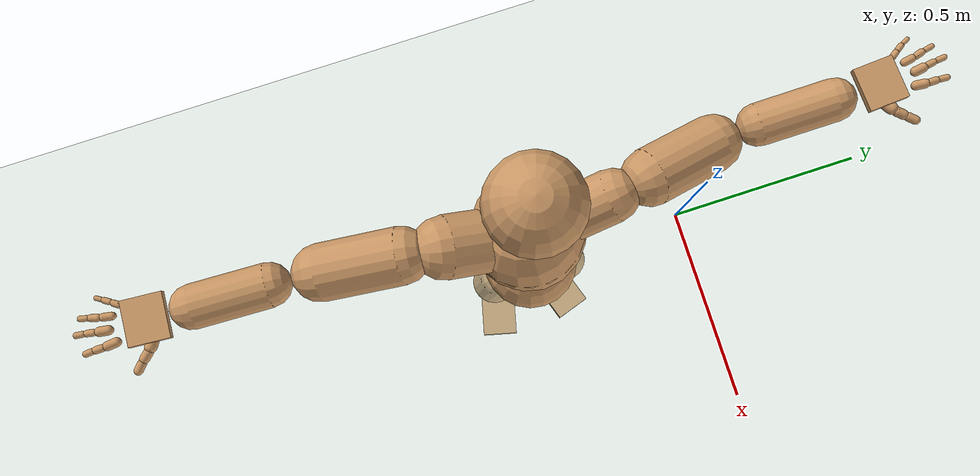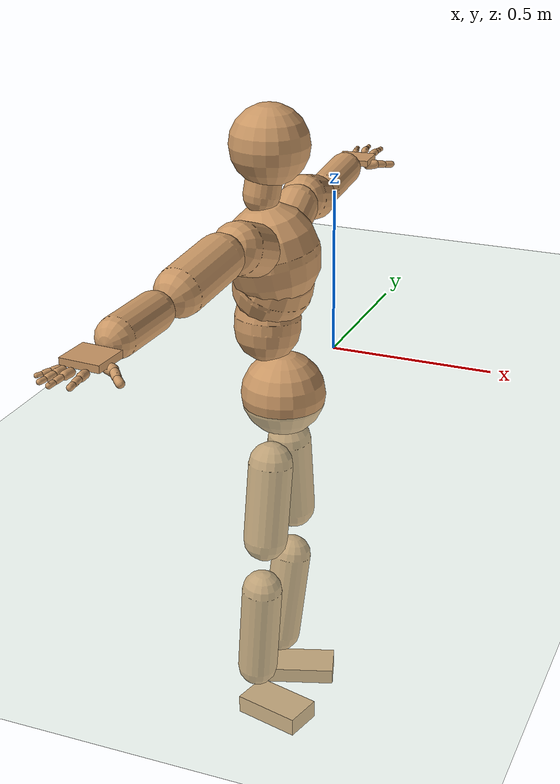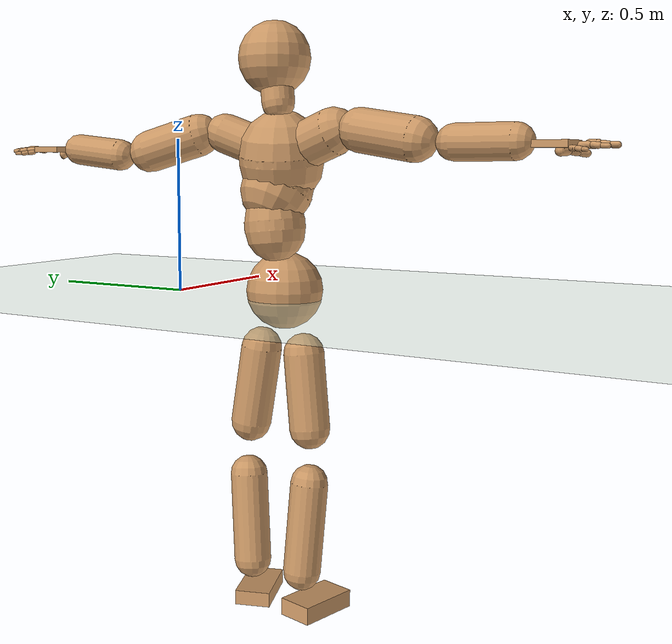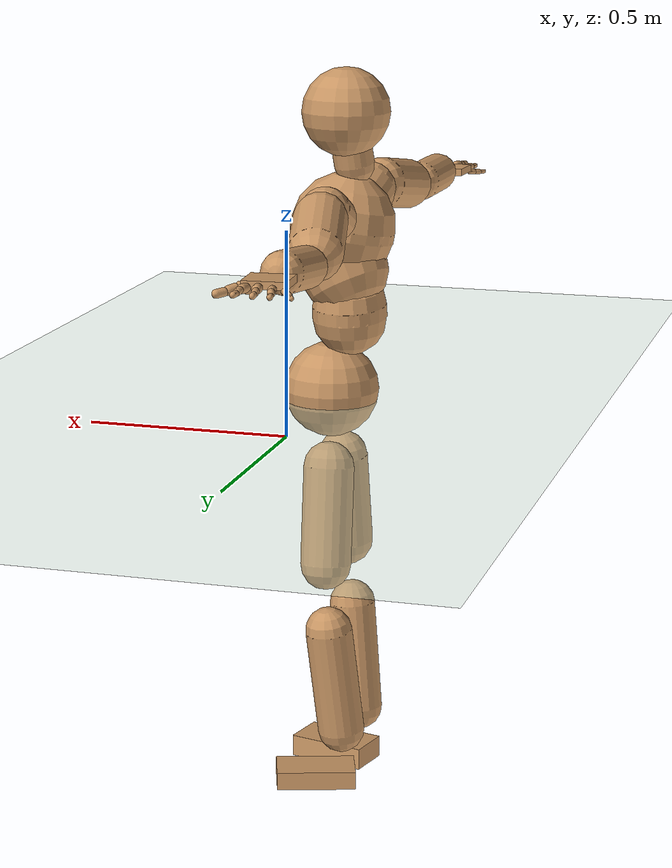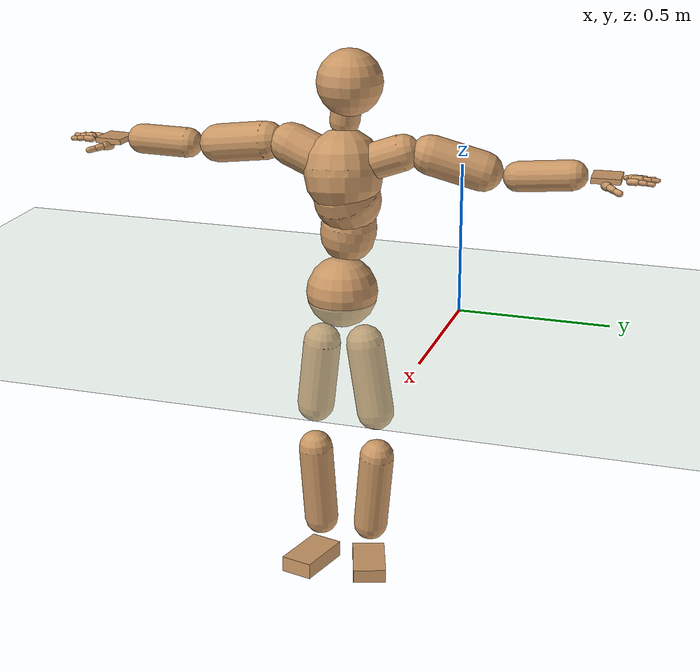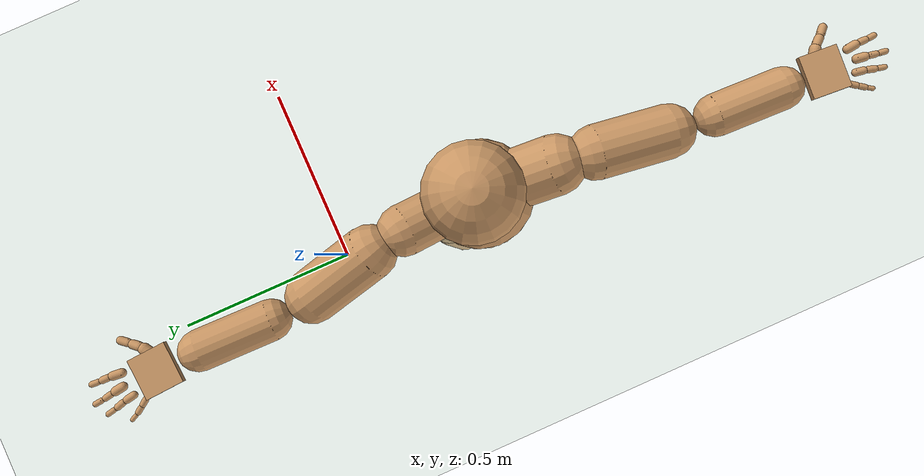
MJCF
<mujoco model="humanoid">
  <compiler coordinate="local" angle="radian"/>
  <default>
    <joint damping="0.0" armature="0.01" stiffness="0.0" limited="true"/>
    <geom conaffinity="1" condim="3" contype="7" margin="0.001" rgba="0.8 0.6 .4 1"/>
  </default>
  <asset>
    <texture type="skybox" builtin="gradient" rgb1=".4 .5 .6" rgb2="0 0 0" width="100" height="100"/>
    <texture builtin="flat" height="1278" mark="cross" markrgb="1 1 1" name="texgeom" random="0.01" rgb1="0.8 0.6 0.4" rgb2="0.8 0.6 0.4" type="cube" width="127"/>
    <texture builtin="checker" height="100" name="texplane" rgb1="0 0 0" rgb2="0.8 0.8 0.8" type="2d" width="100"/>
    <material name="MatPlane" reflectance="0.5" shininess="1" specular="1" texrepeat="60 60" texture="texplane"/>
    <material name="geom" texture="texgeom" texuniform="true"/>
  </asset>
  <worldbody>
    <light cutoff="100" diffuse="1 1 1" dir="-0 0 -1.3" directional="true" exponent="1" pos="0 0 1.3" specular=".1 .1 .1"/>
    <geom conaffinity="1" condim="3" name="floor" pos="0 0 0" rgba="0.8 0.9 0.8 1" size="100 100 .2" type="plane" material="MatPlane"/>
    <body name="Pelvis" pos="0.0021 -0.4071 0.026">
      <freejoint name="Pelvis"/>
      <geom type="sphere" contype="1" conaffinity="1" density="500" size="0.1216" pos="0.0000 0.0000 0.0000" name="Pelvis"/>
      <body name="L_Hip" pos="-0.0142 0.0637 -0.1029">
        <joint name="L_Hip_x" type="hinge" pos="0 0 0" axis="1 0 0" stiffness="800" damping="80" armature="0.02" range="-180.0000 180.0000"/>
        <joint name="L_Hip_y" type="hinge" pos="0 0 0" axis="0 1 0" stiffness="800" damping="80" armature="0.02" range="-180.0000 180.0000"/>
        <joint name="L_Hip_z" type="hinge" pos="0 0 0" axis="0 0 1" stiffness="800" damping="80" armature="0.02" range="-180.0000 180.0000"/>
        <geom type="capsule" contype="1" conaffinity="1" density="500" fromto="-0.0011 0.0127 -0.0830 -0.0045 0.0510 -0.3320" size="0.0646" name="L_Hip"/>
        <body name="L_Knee" pos="-0.0056 0.0637 -0.415">
          <joint name="L_Knee_x" type="hinge" pos="0 0 0" axis="1 0 0" stiffness="800" damping="80" armature="0.02" range="-180.0000 180.0000"/>
          <joint name="L_Knee_y" type="hinge" pos="0 0 0" axis="0 1 0" stiffness="800" damping="80" armature="0.02" range="-180.0000 180.0000"/>
          <joint name="L_Knee_z" type="hinge" pos="0 0 0" axis="0 0 1" stiffness="800" damping="80" armature="0.02" range="-180.0000 180.0000"/>
          <geom type="capsule" contype="1" conaffinity="1" density="500" fromto="-0.0088 -0.0100 -0.0927 -0.0352 -0.0400 -0.3707" size="0.0603" name="L_Knee"/>
          <body name="L_Ankle" pos="-0.0441 -0.05 -0.4634">
            <joint name="L_Ankle_x" type="hinge" pos="0 0 0" axis="1 0 0" stiffness="800" damping="80" armature="0.02" range="-180.0000 180.0000"/>
            <joint name="L_Ankle_y" type="hinge" pos="0 0 0" axis="0 1 0" stiffness="800" damping="80" armature="0.02" range="-180.0000 180.0000"/>
            <joint name="L_Ankle_z" type="hinge" pos="0 0 0" axis="0 0 1" stiffness="800" damping="80" armature="0.02" range="-180.0000 180.0000"/>
            <geom type="box" contype="1" conaffinity="1" density="500" pos="0.0736 0.0243 -0.0340" size="0.1021 0.0571 0.0236" quat="0.9874 0.0000 0.0000 0.1586" name="L_Ankle"/>
            <body name="L_Toe" pos="0.1472 0.0485 -0.0679">
              <joint name="L_Toe_x" type="hinge" pos="0 0 0" axis="1 0 0" stiffness="500" damping="50" armature="0.02" range="-180.0000 180.0000"/>
              <joint name="L_Toe_y" type="hinge" pos="0 0 0" axis="0 1 0" stiffness="500" damping="50" armature="0.02" range="-180.0000 180.0000"/>
              <joint name="L_Toe_z" type="hinge" pos="0 0 0" axis="0 0 1" stiffness="500" damping="50" armature="0.02" range="-180.0000 180.0000"/>
              <geom type="box" contype="1" conaffinity="1" density="500" pos="0.0000 0.0000 0.0334" size="0.0011 0.0027 0.0012" quat="0.9867 0.0000 0.0000 0.1625" name="L_Toe"/>
            </body>
          </body>
        </body>
      </body>
      <body name="R_Hip" pos="-0.0071 -0.0664 -0.1151">
        <joint name="R_Hip_x" type="hinge" pos="0 0 0" axis="1 0 0" stiffness="800" damping="80" armature="0.02" range="-180.0000 180.0000"/>
        <joint name="R_Hip_y" type="hinge" pos="0 0 0" axis="0 1 0" stiffness="800" damping="80" armature="0.02" range="-180.0000 180.0000"/>
        <joint name="R_Hip_z" type="hinge" pos="0 0 0" axis="0 0 1" stiffness="800" damping="80" armature="0.02" range="-180.0000 180.0000"/>
        <geom type="capsule" contype="1" conaffinity="1" density="500" fromto="-0.0029 -0.0093 -0.0792 -0.0115 -0.0371 -0.3167" size="0.0644" name="R_Hip"/>
        <body name="R_Knee" pos="-0.0143 -0.0464 -0.3959">
          <joint name="R_Knee_x" type="hinge" pos="0 0 0" axis="1 0 0" stiffness="800" damping="80" armature="0.02" range="-180.0000 180.0000"/>
          <joint name="R_Knee_y" type="hinge" pos="0 0 0" axis="0 1 0" stiffness="800" damping="80" armature="0.02" range="-180.0000 180.0000"/>
          <joint name="R_Knee_z" type="hinge" pos="0 0 0" axis="0 0 1" stiffness="800" damping="80" armature="0.02" range="-180.0000 180.0000"/>
          <geom type="capsule" contype="1" conaffinity="1" density="500" fromto="-0.0083 0.0037 -0.0957 -0.0333 0.0149 -0.3827" size="0.0598" name="R_Knee"/>
          <body name="R_Ankle" pos="-0.0416 0.0186 -0.4784">
            <joint name="R_Ankle_x" type="hinge" pos="0 0 0" axis="1 0 0" stiffness="800" damping="80" armature="0.02" range="-180.0000 180.0000"/>
            <joint name="R_Ankle_y" type="hinge" pos="0 0 0" axis="0 1 0" stiffness="800" damping="80" armature="0.02" range="-180.0000 180.0000"/>
            <joint name="R_Ankle_z" type="hinge" pos="0 0 0" axis="0 0 1" stiffness="800" damping="80" armature="0.02" range="-180.0000 180.0000"/>
            <geom type="box" contype="1" conaffinity="1" density="500" pos="0.0771 -0.0193 -0.0328" size="0.1021 0.0571 0.0282" quat="0.9925 0.0000 0.0000 -0.1221" name="R_Ankle"/>
            <body name="R_Toe" pos="0.1542 -0.0385 -0.0657">
              <joint name="R_Toe_x" type="hinge" pos="0 0 0" axis="1 0 0" stiffness="500" damping="50" armature="0.02" range="-180.0000 180.0000"/>
              <joint name="R_Toe_y" type="hinge" pos="0 0 0" axis="0 1 0" stiffness="500" damping="50" armature="0.02" range="-180.0000 180.0000"/>
              <joint name="R_Toe_z" type="hinge" pos="0 0 0" axis="0 0 1" stiffness="500" damping="50" armature="0.02" range="-180.0000 180.0000"/>
              <geom type="box" contype="1" conaffinity="1" density="500" pos="0.0000 0.0000 0.0277" size="0.0011 0.0027 0.0012" quat="0.9934 0.0000 0.0000 -0.1146" name="R_Toe"/>
            </body>
          </body>
        </body>
      </body>
      <body name="Torso" pos="-0.0502 -0.0006 0.123">
        <joint name="Torso_x" type="hinge" pos="0 0 0" axis="1 0 0" stiffness="1000" damping="100" armature="0.02" range="-180.0000 180.0000"/>
        <joint name="Torso_y" type="hinge" pos="0 0 0" axis="0 1 0" stiffness="1000" damping="100" armature="0.02" range="-180.0000 180.0000"/>
        <joint name="Torso_z" type="hinge" pos="0 0 0" axis="0 0 1" stiffness="1000" damping="100" armature="0.02" range="-180.0000 180.0000"/>
        <geom type="capsule" contype="1" conaffinity="1" density="500" fromto="0.0020 0.0101 0.0990 0.0013 0.0067 0.0660" size="0.0945" name="Torso"/>
        <body name="Spine" pos="0.0034 0.0168 0.165">
          <joint name="Spine_x" type="hinge" pos="0 0 0" axis="1 0 0" stiffness="1000" damping="100" armature="0.02" range="-180.0000 180.0000"/>
          <joint name="Spine_y" type="hinge" pos="0 0 0" axis="0 1 0" stiffness="1000" damping="100" armature="0.02" range="-180.0000 180.0000"/>
          <joint name="Spine_z" type="hinge" pos="0 0 0" axis="0 0 1" stiffness="1000" damping="100" armature="0.02" range="-180.0000 180.0000"/>
          <geom type="capsule" contype="1" conaffinity="1" density="500" fromto="0.0191 -0.0087 0.0378 0.0128 -0.0058 0.0252" size="0.113" name="Spine"/>
          <body name="Chest" pos="0.0319 -0.0144 0.063">
            <joint name="Chest_x" type="hinge" pos="0 0 0" axis="1 0 0" stiffness="1000" damping="100" armature="0.02" range="-180.0000 180.0000"/>
            <joint name="Chest_y" type="hinge" pos="0 0 0" axis="0 1 0" stiffness="1000" damping="100" armature="0.02" range="-180.0000 180.0000"/>
            <joint name="Chest_z" type="hinge" pos="0 0 0" axis="0 0 1" stiffness="1000" damping="100" armature="0.02" range="-180.0000 180.0000"/>
            <geom type="capsule" contype="1" conaffinity="1" density="500" fromto="-0.0133 -0.0050 0.0727 -0.0089 -0.0033 0.0484" size="0.1321" name="Chest"/>
            <body name="Neck" pos="-0.0435 -0.0149 0.1909">
              <joint name="Neck_x" type="hinge" pos="0 0 0" axis="1 0 0" stiffness="500" damping="50" armature="0.02" range="-180.0000 180.0000"/>
              <joint name="Neck_y" type="hinge" pos="0 0 0" axis="0 1 0" stiffness="500" damping="50" armature="0.02" range="-180.0000 180.0000"/>
              <joint name="Neck_z" type="hinge" pos="0 0 0" axis="0 0 1" stiffness="500" damping="50" armature="0.02" range="-180.0000 180.0000"/>
              <geom type="capsule" contype="1" conaffinity="1" density="500" fromto="0.0040 0.0056 0.0334 0.0160 0.0225 0.1337" size="0.0506" name="Neck"/>
              <body name="Head" pos="0.0201 0.0282 0.1671">
                <joint name="Head_x" type="hinge" pos="0 0 0" axis="1 0 0" stiffness="500" damping="50" armature="0.02" range="-180.0000 180.0000"/>
                <joint name="Head_y" type="hinge" pos="0 0 0" axis="0 1 0" stiffness="500" damping="50" armature="0.02" range="-180.0000 180.0000"/>
                <joint name="Head_z" type="hinge" pos="0 0 0" axis="0 0 1" stiffness="500" damping="50" armature="0.02" range="-180.0000 180.0000"/>
                <geom type="sphere" contype="1" conaffinity="1" density="500" size="0.1109" pos="0.0000 0.0000 0.0000" name="Head"/>
              </body>
            </body>
            <body name="L_Thorax" pos="-0.0104 0.0514 0.0857">
              <joint name="L_Thorax_x" type="hinge" pos="0 0 0" axis="1 0 0" stiffness="500" damping="50" armature="0.02" range="-180.0000 180.0000"/>
              <joint name="L_Thorax_y" type="hinge" pos="0 0 0" axis="0 1 0" stiffness="500" damping="50" armature="0.02" range="-180.0000 180.0000"/>
              <joint name="L_Thorax_z" type="hinge" pos="0 0 0" axis="0 0 1" stiffness="500" damping="50" armature="0.02" range="-180.0000 180.0000"/>
              <geom type="capsule" contype="1" conaffinity="1" density="500" fromto="-0.0027 0.0357 0.0129 -0.0109 0.1429 0.0516" size="0.0615" name="L_Thorax"/>
              <body name="L_Shoulder" pos="-0.0137 0.1787 0.0645">
                <joint name="L_Shoulder_x" type="hinge" pos="0 0 0" axis="1 0 0" stiffness="500" damping="50" armature="0.02" range="-180.0000 180.0000"/>
                <joint name="L_Shoulder_y" type="hinge" pos="0 0 0" axis="0 1 0" stiffness="500" damping="50" armature="0.02" range="-180.0000 180.0000"/>
                <joint name="L_Shoulder_z" type="hinge" pos="0 0 0" axis="0 0 1" stiffness="500" damping="50" armature="0.02" range="-180.0000 180.0000"/>
                <geom type="capsule" contype="1" conaffinity="1" density="500" fromto="-0.0120 0.0560 -0.0170 -0.0480 0.2240 -0.0681" size="0.0665" name="L_Shoulder"/>
                <body name="L_Elbow" pos="-0.06 0.2799 -0.0852">
                  <joint name="L_Elbow_x" type="hinge" pos="0 0 0" axis="1 0 0" stiffness="500" damping="50" armature="0.02" range="-720.0000 720.0000"/>
                  <joint name="L_Elbow_y" type="hinge" pos="0 0 0" axis="0 1 0" stiffness="500" damping="50" armature="0.02" range="-720.0000 720.0000"/>
                  <joint name="L_Elbow_z" type="hinge" pos="0 0 0" axis="0 0 1" stiffness="500" damping="50" armature="0.02" range="-720.0000 720.0000"/>
                  <geom type="capsule" contype="1" conaffinity="1" density="500" fromto="0.0008 0.0593 0.0064 0.0032 0.2370 0.0255" size="0.0503" name="L_Elbow"/>
                  <body name="L_Wrist" pos="0.004 0.2963 0.0319">
                    <joint name="L_Wrist_x" type="hinge" pos="0 0 0" axis="1 0 0" stiffness="300" damping="30" armature="0.02" range="-180.0000 180.0000"/>
                    <joint name="L_Wrist_y" type="hinge" pos="0 0 0" axis="0 1 0" stiffness="300" damping="30" armature="0.02" range="-180.0000 180.0000"/>
                    <joint name="L_Wrist_z" type="hinge" pos="0 0 0" axis="0 0 1" stiffness="300" damping="30" armature="0.02" range="-180.0000 180.0000"/>
                    <geom type="box" contype="1" conaffinity="1" density="500" pos="-0.0032 0.0514 -0.0054" size="0.0478 0.0513 0.0093" quat="0.7288 0.0000 0.0000 -0.6847" name="L_Wrist"/>
                    <body name="L_Index1" pos="0.0243 0.1204 -0.0069">
                      <joint name="L_Index1_x" type="hinge" pos="0 0 0" axis="1 0 0" stiffness="100" damping="10" armature="0.02" range="-180.0000 180.0000"/>
                      <joint name="L_Index1_y" type="hinge" pos="0 0 0" axis="0 1 0" stiffness="100" damping="10" armature="0.02" range="-180.0000 180.0000"/>
                      <joint name="L_Index1_z" type="hinge" pos="0 0 0" axis="0 0 1" stiffness="100" damping="10" armature="0.02" range="-180.0000 180.0000"/>
                      <geom type="capsule" contype="1" conaffinity="1" density="500" fromto="0.0008 0.0071 0.0005 0.0031 0.0284 0.0018" size="0.0109" name="L_Index1"/>
                      <body name="L_Index2" pos="0.0039 0.0355 0.0023">
                        <joint name="L_Index2_x" type="hinge" pos="0 0 0" axis="1 0 0" stiffness="100" damping="10" armature="0.02" range="-180.0000 180.0000"/>
                        <joint name="L_Index2_y" type="hinge" pos="0 0 0" axis="0 1 0" stiffness="100" damping="10" armature="0.02" range="-180.0000 180.0000"/>
                        <joint name="L_Index2_z" type="hinge" pos="0 0 0" axis="0 0 1" stiffness="100" damping="10" armature="0.02" range="-180.0000 180.0000"/>
                        <geom type="capsule" contype="1" conaffinity="1" density="500" fromto="-0.0001 0.0050 -0.0006 -0.0002 0.0199 -0.0022" size="0.0087" name="L_Index2"/>
                        <body name="L_Index3" pos="-0.0003 0.0249 -0.0028">
                          <joint name="L_Index3_x" type="hinge" pos="0 0 0" axis="1 0 0" stiffness="100" damping="10" armature="0.02" range="-180.0000 180.0000"/>
                          <joint name="L_Index3_y" type="hinge" pos="0 0 0" axis="0 1 0" stiffness="100" damping="10" armature="0.02" range="-180.0000 180.0000"/>
                          <joint name="L_Index3_z" type="hinge" pos="0 0 0" axis="0 0 1" stiffness="100" damping="10" armature="0.02" range="-180.0000 180.0000"/>
                          <geom type="capsule" contype="1" conaffinity="1" density="500" fromto="0.0003 0.0054 -0.0002 0.0014 0.0215 -0.0006" size="0.0074" name="L_Index3"/>
                        </body>
                      </body>
                    </body>
                    <body name="L_Middle1" pos="-0.0043 0.1293 -0.0038">
                      <joint name="L_Middle1_x" type="hinge" pos="0 0 0" axis="1 0 0" stiffness="100" damping="10" armature="0.02" range="-180.0000 180.0000"/>
                      <joint name="L_Middle1_y" type="hinge" pos="0 0 0" axis="0 1 0" stiffness="100" damping="10" armature="0.02" range="-180.0000 180.0000"/>
                      <joint name="L_Middle1_z" type="hinge" pos="0 0 0" axis="0 0 1" stiffness="100" damping="10" armature="0.02" range="-180.0000 180.0000"/>
                      <geom type="capsule" contype="1" conaffinity="1" density="500" fromto="-0.0010 0.0068 0.0002 -0.0040 0.0272 0.0006" size="0.011" name="L_Middle1"/>
                      <body name="L_Middle2" pos="-0.0051 0.034 0.0008">
                        <joint name="L_Middle2_x" type="hinge" pos="0 0 0" axis="1 0 0" stiffness="100" damping="10" armature="0.02" range="-180.0000 180.0000"/>
                        <joint name="L_Middle2_y" type="hinge" pos="0 0 0" axis="0 1 0" stiffness="100" damping="10" armature="0.02" range="-180.0000 180.0000"/>
                        <joint name="L_Middle2_z" type="hinge" pos="0 0 0" axis="0 0 1" stiffness="100" damping="10" armature="0.02" range="-180.0000 180.0000"/>
                        <geom type="capsule" contype="1" conaffinity="1" density="500" fromto="-0.0010 0.0052 -0.0006 -0.0039 0.0208 -0.0023" size="0.008" name="L_Middle2"/>
                        <body name="L_Middle3" pos="-0.0048 0.026 -0.0029">
                          <joint name="L_Middle3_x" type="hinge" pos="0 0 0" axis="1 0 0" stiffness="100" damping="10" armature="0.02" range="-180.0000 180.0000"/>
                          <joint name="L_Middle3_y" type="hinge" pos="0 0 0" axis="0 1 0" stiffness="100" damping="10" armature="0.02" range="-180.0000 180.0000"/>
                          <joint name="L_Middle3_z" type="hinge" pos="0 0 0" axis="0 0 1" stiffness="100" damping="10" armature="0.02" range="-180.0000 180.0000"/>
                          <geom type="capsule" contype="1" conaffinity="1" density="500" fromto="-0.0006 0.0056 -0.0002 -0.0023 0.0224 -0.0007" size="0.007" name="L_Middle3"/>
                        </body>
                      </body>
                    </body>
                    <body name="L_Pinky1" pos="-0.0519 0.1003 -0.0146">
                      <joint name="L_Pinky1_x" type="hinge" pos="0 0 0" axis="1 0 0" stiffness="100" damping="10" armature="0.02" range="-180.0000 180.0000"/>
                      <joint name="L_Pinky1_y" type="hinge" pos="0 0 0" axis="0 1 0" stiffness="100" damping="10" armature="0.02" range="-180.0000 180.0000"/>
                      <joint name="L_Pinky1_z" type="hinge" pos="0 0 0" axis="0 0 1" stiffness="100" damping="10" armature="0.02" range="-180.0000 180.0000"/>
                      <geom type="capsule" contype="1" conaffinity="1" density="500" fromto="-0.0026 0.0037 -0.0004 -0.0105 0.0147 -0.0015" size="0.0077" name="L_Pinky1"/>
                      <body name="L_Pinky2" pos="-0.0131 0.0183 -0.0018">
                        <joint name="L_Pinky2_x" type="hinge" pos="0 0 0" axis="1 0 0" stiffness="100" damping="10" armature="0.02" range="-180.0000 180.0000"/>
                        <joint name="L_Pinky2_y" type="hinge" pos="0 0 0" axis="0 1 0" stiffness="100" damping="10" armature="0.02" range="-180.0000 180.0000"/>
                        <joint name="L_Pinky2_z" type="hinge" pos="0 0 0" axis="0 0 1" stiffness="100" damping="10" armature="0.02" range="-180.0000 180.0000"/>
                        <geom type="capsule" contype="1" conaffinity="1" density="500" fromto="-0.0024 0.0036 -0.0005 -0.0095 0.0142 -0.0019" size="0.0073" name="L_Pinky2"/>
                        <body name="L_Pinky3" pos="-0.0119 0.0178 -0.0024">
                          <joint name="L_Pinky3_x" type="hinge" pos="0 0 0" axis="1 0 0" stiffness="100" damping="10" armature="0.02" range="-180.0000 180.0000"/>
                          <joint name="L_Pinky3_y" type="hinge" pos="0 0 0" axis="0 1 0" stiffness="100" damping="10" armature="0.02" range="-180.0000 180.0000"/>
                          <joint name="L_Pinky3_z" type="hinge" pos="0 0 0" axis="0 0 1" stiffness="100" damping="10" armature="0.02" range="-180.0000 180.0000"/>
                          <geom type="capsule" contype="1" conaffinity="1" density="500" fromto="-0.0020 0.0040 -0.0001 -0.0079 0.0158 -0.0003" size="0.0054" name="L_Pinky3"/>
                        </body>
                      </body>
                    </body>
                    <body name="L_Ring1" pos="-0.0325 0.1157 -0.0077">
                      <joint name="L_Ring1_x" type="hinge" pos="0 0 0" axis="1 0 0" stiffness="100" damping="10" armature="0.02" range="-180.0000 180.0000"/>
                      <joint name="L_Ring1_y" type="hinge" pos="0 0 0" axis="0 1 0" stiffness="100" damping="10" armature="0.02" range="-180.0000 180.0000"/>
                      <joint name="L_Ring1_z" type="hinge" pos="0 0 0" axis="0 0 1" stiffness="100" damping="10" armature="0.02" range="-180.0000 180.0000"/>
                      <geom type="capsule" contype="1" conaffinity="1" density="500" fromto="-0.0011 0.0064 0.0002 -0.0045 0.0255 0.0006" size="0.0093" name="L_Ring1"/>
                      <body name="L_Ring2" pos="-0.0056 0.0319 0.0008">
                        <joint name="L_Ring2_x" type="hinge" pos="0 0 0" axis="1 0 0" stiffness="100" damping="10" armature="0.02" range="-180.0000 180.0000"/>
                        <joint name="L_Ring2_y" type="hinge" pos="0 0 0" axis="0 1 0" stiffness="100" damping="10" armature="0.02" range="-180.0000 180.0000"/>
                        <joint name="L_Ring2_z" type="hinge" pos="0 0 0" axis="0 0 1" stiffness="100" damping="10" armature="0.02" range="-180.0000 180.0000"/>
                        <geom type="capsule" contype="1" conaffinity="1" density="500" fromto="-0.0015 0.0051 -0.0006 -0.0059 0.0204 -0.0022" size="0.0085" name="L_Ring2"/>
                        <body name="L_Ring3" pos="-0.0074 0.0255 -0.0028">
                          <joint name="L_Ring3_x" type="hinge" pos="0 0 0" axis="1 0 0" stiffness="100" damping="10" armature="0.02" range="-180.0000 180.0000"/>
                          <joint name="L_Ring3_y" type="hinge" pos="0 0 0" axis="0 1 0" stiffness="100" damping="10" armature="0.02" range="-180.0000 180.0000"/>
                          <joint name="L_Ring3_z" type="hinge" pos="0 0 0" axis="0 0 1" stiffness="100" damping="10" armature="0.02" range="-180.0000 180.0000"/>
                          <geom type="capsule" contype="1" conaffinity="1" density="500" fromto="-0.0011 0.0055 -0.0002 -0.0043 0.0220 -0.0006" size="0.0066" name="L_Ring3"/>
                        </body>
                      </body>
                    </body>
                    <body name="L_Thumb1" pos="0.0323 0.0481 -0.0212">
                      <joint name="L_Thumb1_x" type="hinge" pos="0 0 0" axis="1 0 0" stiffness="100" damping="10" armature="0.02" range="-180.0000 180.0000"/>
                      <joint name="L_Thumb1_y" type="hinge" pos="0 0 0" axis="0 1 0" stiffness="100" damping="10" armature="0.02" range="-180.0000 180.0000"/>
                      <joint name="L_Thumb1_z" type="hinge" pos="0 0 0" axis="0 0 1" stiffness="100" damping="10" armature="0.02" range="-180.0000 180.0000"/>
                      <geom type="capsule" contype="1" conaffinity="1" density="500" fromto="0.0061 0.0037 0.0005 0.0242 0.0148 0.0018" size="0.0145" name="L_Thumb1"/>
                      <body name="L_Thumb2" pos="0.0303 0.0186 0.0023">
                        <joint name="L_Thumb2_x" type="hinge" pos="0 0 0" axis="1 0 0" stiffness="100" damping="10" armature="0.02" range="-180.0000 180.0000"/>
                        <joint name="L_Thumb2_y" type="hinge" pos="0 0 0" axis="0 1 0" stiffness="100" damping="10" armature="0.02" range="-180.0000 180.0000"/>
                        <joint name="L_Thumb2_z" type="hinge" pos="0 0 0" axis="0 0 1" stiffness="100" damping="10" armature="0.02" range="-180.0000 180.0000"/>
                        <geom type="capsule" contype="1" conaffinity="1" density="500" fromto="0.0037 0.0044 -0.0011 0.0149 0.0178 -0.0044" size="0.0114" name="L_Thumb2"/>
                        <body name="L_Thumb3" pos="0.0186 0.0222 -0.0056">
                          <joint name="L_Thumb3_x" type="hinge" pos="0 0 0" axis="1 0 0" stiffness="100" damping="10" armature="0.02" range="-180.0000 180.0000"/>
                          <joint name="L_Thumb3_y" type="hinge" pos="0 0 0" axis="0 1 0" stiffness="100" damping="10" armature="0.02" range="-180.0000 180.0000"/>
                          <joint name="L_Thumb3_z" type="hinge" pos="0 0 0" axis="0 0 1" stiffness="100" damping="10" armature="0.02" range="-180.0000 180.0000"/>
                          <geom type="capsule" contype="1" conaffinity="1" density="500" fromto="0.0041 0.0048 -0.0007 0.0165 0.0194 -0.0028" size="0.0103" name="L_Thumb3"/>
                        </body>
                      </body>
                    </body>
                  </body>
                </body>
              </body>
            </body>
            <body name="R_Thorax" pos="-0.0128 -0.0613 0.0867">
              <joint name="R_Thorax_x" type="hinge" pos="0 0 0" axis="1 0 0" stiffness="500" damping="50" armature="0.02" range="-180.0000 180.0000"/>
              <joint name="R_Thorax_y" type="hinge" pos="0 0 0" axis="0 1 0" stiffness="500" damping="50" armature="0.02" range="-180.0000 180.0000"/>
              <joint name="R_Thorax_z" type="hinge" pos="0 0 0" axis="0 0 1" stiffness="500" damping="50" armature="0.02" range="-180.0000 180.0000"/>
              <geom type="capsule" contype="1" conaffinity="1" density="500" fromto="-0.0034 -0.0326 0.0124 -0.0136 -0.1303 0.0497" size="0.0725" name="R_Thorax"/>
              <body name="R_Shoulder" pos="-0.017 -0.1629 0.0621">
                <joint name="R_Shoulder_x" type="hinge" pos="0 0 0" axis="1 0 0" stiffness="500" damping="50" armature="0.02" range="-180.0000 180.0000"/>
                <joint name="R_Shoulder_y" type="hinge" pos="0 0 0" axis="0 1 0" stiffness="500" damping="50" armature="0.02" range="-180.0000 180.0000"/>
                <joint name="R_Shoulder_z" type="hinge" pos="0 0 0" axis="0 0 1" stiffness="500" damping="50" armature="0.02" range="-180.0000 180.0000"/>
                <geom type="capsule" contype="1" conaffinity="1" density="500" fromto="-0.0078 -0.0607 -0.0096 -0.0310 -0.2429 -0.0385" size="0.0655" name="R_Shoulder"/>
                <body name="R_Elbow" pos="-0.0388 -0.3036 -0.0482">
                  <joint name="R_Elbow_x" type="hinge" pos="0 0 0" axis="1 0 0" stiffness="500" damping="50" armature="0.02" range="-720.0000 720.0000"/>
                  <joint name="R_Elbow_y" type="hinge" pos="0 0 0" axis="0 1 0" stiffness="500" damping="50" armature="0.02" range="-720.0000 720.0000"/>
                  <joint name="R_Elbow_z" type="hinge" pos="0 0 0" axis="0 0 1" stiffness="500" damping="50" armature="0.02" range="-720.0000 720.0000"/>
                  <geom type="capsule" contype="1" conaffinity="1" density="500" fromto="-0.0021 -0.0575 0.0001 -0.0084 -0.2298 0.0005" size="0.0515" name="R_Elbow"/>
                  <body name="R_Wrist" pos="-0.0105 -0.2873 0.0006">
                    <joint name="R_Wrist_x" type="hinge" pos="0 0 0" axis="1 0 0" stiffness="300" damping="30" armature="0.02" range="-180.0000 180.0000"/>
                    <joint name="R_Wrist_y" type="hinge" pos="0 0 0" axis="0 1 0" stiffness="300" damping="30" armature="0.02" range="-180.0000 180.0000"/>
                    <joint name="R_Wrist_z" type="hinge" pos="0 0 0" axis="0 0 1" stiffness="300" damping="30" armature="0.02" range="-180.0000 180.0000"/>
                    <geom type="box" contype="1" conaffinity="1" density="500" pos="-0.0036 -0.0509 -0.0076" size="0.0478 0.0527 0.0096" quat="0.7319 0.0000 0.0000 0.6814" name="R_Wrist"/>
                    <body name="R_Index1" pos="0.0234 -0.1195 -0.0112">
                      <joint name="R_Index1_x" type="hinge" pos="0 0 0" axis="1 0 0" stiffness="100" damping="10" armature="0.02" range="-180.0000 180.0000"/>
                      <joint name="R_Index1_y" type="hinge" pos="0 0 0" axis="0 1 0" stiffness="100" damping="10" armature="0.02" range="-180.0000 180.0000"/>
                      <joint name="R_Index1_z" type="hinge" pos="0 0 0" axis="0 0 1" stiffness="100" damping="10" armature="0.02" range="-180.0000 180.0000"/>
                      <geom type="capsule" contype="1" conaffinity="1" density="500" fromto="0.0008 -0.0071 0.0005 0.0031 -0.0284 0.0018" size="0.0109" name="R_Index1"/>
                      <body name="R_Index2" pos="0.0039 -0.0355 0.0023">
                        <joint name="R_Index2_x" type="hinge" pos="0 0 0" axis="1 0 0" stiffness="100" damping="10" armature="0.02" range="-180.0000 180.0000"/>
                        <joint name="R_Index2_y" type="hinge" pos="0 0 0" axis="0 1 0" stiffness="100" damping="10" armature="0.02" range="-180.0000 180.0000"/>
                        <joint name="R_Index2_z" type="hinge" pos="0 0 0" axis="0 0 1" stiffness="100" damping="10" armature="0.02" range="-180.0000 180.0000"/>
                        <geom type="capsule" contype="1" conaffinity="1" density="500" fromto="-0.0001 -0.0050 -0.0006 -0.0002 -0.0199 -0.0022" size="0.0087" name="R_Index2"/>
                        <body name="R_Index3" pos="-0.0003 -0.0249 -0.0028">
                          <joint name="R_Index3_x" type="hinge" pos="0 0 0" axis="1 0 0" stiffness="100" damping="10" armature="0.02" range="-180.0000 180.0000"/>
                          <joint name="R_Index3_y" type="hinge" pos="0 0 0" axis="0 1 0" stiffness="100" damping="10" armature="0.02" range="-180.0000 180.0000"/>
                          <joint name="R_Index3_z" type="hinge" pos="0 0 0" axis="0 0 1" stiffness="100" damping="10" armature="0.02" range="-180.0000 180.0000"/>
                          <geom type="capsule" contype="1" conaffinity="1" density="500" fromto="0.0003 -0.0046 -0.0002 0.0014 -0.0183 -0.0006" size="0.0077" name="R_Index3"/>
                        </body>
                      </body>
                    </body>
                    <body name="R_Middle1" pos="-0.0051 -0.1284 -0.0081">
                      <joint name="R_Middle1_x" type="hinge" pos="0 0 0" axis="1 0 0" stiffness="100" damping="10" armature="0.02" range="-180.0000 180.0000"/>
                      <joint name="R_Middle1_y" type="hinge" pos="0 0 0" axis="0 1 0" stiffness="100" damping="10" armature="0.02" range="-180.0000 180.0000"/>
                      <joint name="R_Middle1_z" type="hinge" pos="0 0 0" axis="0 0 1" stiffness="100" damping="10" armature="0.02" range="-180.0000 180.0000"/>
                      <geom type="capsule" contype="1" conaffinity="1" density="500" fromto="-0.0010 -0.0068 0.0002 -0.0040 -0.0272 0.0006" size="0.011" name="R_Middle1"/>
                      <body name="R_Middle2" pos="-0.0051 -0.034 0.0008">
                        <joint name="R_Middle2_x" type="hinge" pos="0 0 0" axis="1 0 0" stiffness="100" damping="10" armature="0.02" range="-180.0000 180.0000"/>
                        <joint name="R_Middle2_y" type="hinge" pos="0 0 0" axis="0 1 0" stiffness="100" damping="10" armature="0.02" range="-180.0000 180.0000"/>
                        <joint name="R_Middle2_z" type="hinge" pos="0 0 0" axis="0 0 1" stiffness="100" damping="10" armature="0.02" range="-180.0000 180.0000"/>
                        <geom type="capsule" contype="1" conaffinity="1" density="500" fromto="-0.0010 -0.0052 -0.0006 -0.0039 -0.0208 -0.0023" size="0.008" name="R_Middle2"/>
                        <body name="R_Middle3" pos="-0.0048 -0.026 -0.0029">
                          <joint name="R_Middle3_x" type="hinge" pos="0 0 0" axis="1 0 0" stiffness="100" damping="10" armature="0.02" range="-180.0000 180.0000"/>
                          <joint name="R_Middle3_y" type="hinge" pos="0 0 0" axis="0 1 0" stiffness="100" damping="10" armature="0.02" range="-180.0000 180.0000"/>
                          <joint name="R_Middle3_z" type="hinge" pos="0 0 0" axis="0 0 1" stiffness="100" damping="10" armature="0.02" range="-180.0000 180.0000"/>
                          <geom type="capsule" contype="1" conaffinity="1" density="500" fromto="-0.0006 -0.0048 -0.0002 -0.0023 -0.0192 -0.0007" size="0.0073" name="R_Middle3"/>
                        </body>
                      </body>
                    </body>
                    <body name="R_Pinky1" pos="-0.0528 -0.0994 -0.0189">
                      <joint name="R_Pinky1_x" type="hinge" pos="0 0 0" axis="1 0 0" stiffness="100" damping="10" armature="0.02" range="-180.0000 180.0000"/>
                      <joint name="R_Pinky1_y" type="hinge" pos="0 0 0" axis="0 1 0" stiffness="100" damping="10" armature="0.02" range="-180.0000 180.0000"/>
                      <joint name="R_Pinky1_z" type="hinge" pos="0 0 0" axis="0 0 1" stiffness="100" damping="10" armature="0.02" range="-180.0000 180.0000"/>
                      <geom type="capsule" contype="1" conaffinity="1" density="500" fromto="-0.0026 -0.0037 -0.0004 -0.0105 -0.0147 -0.0015" size="0.0077" name="R_Pinky1"/>
                      <body name="R_Pinky2" pos="-0.0131 -0.0183 -0.0018">
                        <joint name="R_Pinky2_x" type="hinge" pos="0 0 0" axis="1 0 0" stiffness="100" damping="10" armature="0.02" range="-180.0000 180.0000"/>
                        <joint name="R_Pinky2_y" type="hinge" pos="0 0 0" axis="0 1 0" stiffness="100" damping="10" armature="0.02" range="-180.0000 180.0000"/>
                        <joint name="R_Pinky2_z" type="hinge" pos="0 0 0" axis="0 0 1" stiffness="100" damping="10" armature="0.02" range="-180.0000 180.0000"/>
                        <geom type="capsule" contype="1" conaffinity="1" density="500" fromto="-0.0024 -0.0036 -0.0005 -0.0095 -0.0142 -0.0019" size="0.0073" name="R_Pinky2"/>
                        <body name="R_Pinky3" pos="-0.0119 -0.0178 -0.0024">
                          <joint name="R_Pinky3_x" type="hinge" pos="0 0 0" axis="1 0 0" stiffness="100" damping="10" armature="0.02" range="-180.0000 180.0000"/>
                          <joint name="R_Pinky3_y" type="hinge" pos="0 0 0" axis="0 1 0" stiffness="100" damping="10" armature="0.02" range="-180.0000 180.0000"/>
                          <joint name="R_Pinky3_z" type="hinge" pos="0 0 0" axis="0 0 1" stiffness="100" damping="10" armature="0.02" range="-180.0000 180.0000"/>
                          <geom type="capsule" contype="1" conaffinity="1" density="500" fromto="-0.0020 -0.0032 -0.0001 -0.0079 -0.0126 -0.0003" size="0.0057" name="R_Pinky3"/>
                        </body>
                      </body>
                    </body>
                    <body name="R_Ring1" pos="-0.0334 -0.1148 -0.012">
                      <joint name="R_Ring1_x" type="hinge" pos="0 0 0" axis="1 0 0" stiffness="100" damping="10" armature="0.02" range="-180.0000 180.0000"/>
                      <joint name="R_Ring1_y" type="hinge" pos="0 0 0" axis="0 1 0" stiffness="100" damping="10" armature="0.02" range="-180.0000 180.0000"/>
                      <joint name="R_Ring1_z" type="hinge" pos="0 0 0" axis="0 0 1" stiffness="100" damping="10" armature="0.02" range="-180.0000 180.0000"/>
                      <geom type="capsule" contype="1" conaffinity="1" density="500" fromto="-0.0011 -0.0064 0.0002 -0.0045 -0.0255 0.0006" size="0.0093" name="R_Ring1"/>
                      <body name="R_Ring2" pos="-0.0056 -0.0319 0.0008">
                        <joint name="R_Ring2_x" type="hinge" pos="0 0 0" axis="1 0 0" stiffness="100" damping="10" armature="0.02" range="-180.0000 180.0000"/>
                        <joint name="R_Ring2_y" type="hinge" pos="0 0 0" axis="0 1 0" stiffness="100" damping="10" armature="0.02" range="-180.0000 180.0000"/>
                        <joint name="R_Ring2_z" type="hinge" pos="0 0 0" axis="0 0 1" stiffness="100" damping="10" armature="0.02" range="-180.0000 180.0000"/>
                        <geom type="capsule" contype="1" conaffinity="1" density="500" fromto="-0.0015 -0.0051 -0.0006 -0.0059 -0.0204 -0.0022" size="0.0085" name="R_Ring2"/>
                        <body name="R_Ring3" pos="-0.0074 -0.0255 -0.0028">
                          <joint name="R_Ring3_x" type="hinge" pos="0 0 0" axis="1 0 0" stiffness="100" damping="10" armature="0.02" range="-180.0000 180.0000"/>
                          <joint name="R_Ring3_y" type="hinge" pos="0 0 0" axis="0 1 0" stiffness="100" damping="10" armature="0.02" range="-180.0000 180.0000"/>
                          <joint name="R_Ring3_z" type="hinge" pos="0 0 0" axis="0 0 1" stiffness="100" damping="10" armature="0.02" range="-180.0000 180.0000"/>
                          <geom type="capsule" contype="1" conaffinity="1" density="500" fromto="-0.0011 -0.0047 -0.0002 -0.0043 -0.0188 -0.0006" size="0.0069" name="R_Ring3"/>
                        </body>
                      </body>
                    </body>
                    <body name="R_Thumb1" pos="0.0315 -0.0472 -0.0255">
                      <joint name="R_Thumb1_x" type="hinge" pos="0 0 0" axis="1 0 0" stiffness="100" damping="10" armature="0.02" range="-180.0000 180.0000"/>
                      <joint name="R_Thumb1_y" type="hinge" pos="0 0 0" axis="0 1 0" stiffness="100" damping="10" armature="0.02" range="-180.0000 180.0000"/>
                      <joint name="R_Thumb1_z" type="hinge" pos="0 0 0" axis="0 0 1" stiffness="100" damping="10" armature="0.02" range="-180.0000 180.0000"/>
                      <geom type="capsule" contype="1" conaffinity="1" density="500" fromto="0.0061 -0.0037 0.0005 0.0242 -0.0148 0.0018" size="0.0145" name="R_Thumb1"/>
                      <body name="R_Thumb2" pos="0.0303 -0.0186 0.0023">
                        <joint name="R_Thumb2_x" type="hinge" pos="0 0 0" axis="1 0 0" stiffness="100" damping="10" armature="0.02" range="-180.0000 180.0000"/>
                        <joint name="R_Thumb2_y" type="hinge" pos="0 0 0" axis="0 1 0" stiffness="100" damping="10" armature="0.02" range="-180.0000 180.0000"/>
                        <joint name="R_Thumb2_z" type="hinge" pos="0 0 0" axis="0 0 1" stiffness="100" damping="10" armature="0.02" range="-180.0000 180.0000"/>
                        <geom type="capsule" contype="1" conaffinity="1" density="500" fromto="0.0037 -0.0044 -0.0011 0.0149 -0.0178 -0.0044" size="0.0114" name="R_Thumb2"/>
                        <body name="R_Thumb3" pos="0.0186 -0.0222 -0.0055">
                          <joint name="R_Thumb3_x" type="hinge" pos="0 0 0" axis="1 0 0" stiffness="100" damping="10" armature="0.02" range="-180.0000 180.0000"/>
                          <joint name="R_Thumb3_y" type="hinge" pos="0 0 0" axis="0 1 0" stiffness="100" damping="10" armature="0.02" range="-180.0000 180.0000"/>
                          <joint name="R_Thumb3_z" type="hinge" pos="0 0 0" axis="0 0 1" stiffness="100" damping="10" armature="0.02" range="-180.0000 180.0000"/>
                          <geom type="capsule" contype="1" conaffinity="1" density="500" fromto="0.0041 -0.0040 -0.0007 0.0165 -0.0162 -0.0028" size="0.0106" name="R_Thumb3"/>
                        </body>
                      </body>
                    </body>
                  </body>
                </body>
              </body>
            </body>
          </body>
        </body>
      </body>
    </body>
  </worldbody>
  <actuator>
    <motor name="L_Hip_x" joint="L_Hip_x" gear="500"/>
    <motor name="L_Hip_y" joint="L_Hip_y" gear="500"/>
    <motor name="L_Hip_z" joint="L_Hip_z" gear="500"/>
    <motor name="L_Knee_x" joint="L_Knee_x" gear="500"/>
    <motor name="L_Knee_y" joint="L_Knee_y" gear="500"/>
    <motor name="L_Knee_z" joint="L_Knee_z" gear="500"/>
    <motor name="L_Ankle_x" joint="L_Ankle_x" gear="500"/>
    <motor name="L_Ankle_y" joint="L_Ankle_y" gear="500"/>
    <motor name="L_Ankle_z" joint="L_Ankle_z" gear="500"/>
    <motor name="L_Toe_x" joint="L_Toe_x" gear="500"/>
    <motor name="L_Toe_y" joint="L_Toe_y" gear="500"/>
    <motor name="L_Toe_z" joint="L_Toe_z" gear="500"/>
    <motor name="R_Hip_x" joint="R_Hip_x" gear="500"/>
    <motor name="R_Hip_y" joint="R_Hip_y" gear="500"/>
    <motor name="R_Hip_z" joint="R_Hip_z" gear="500"/>
    <motor name="R_Knee_x" joint="R_Knee_x" gear="500"/>
    <motor name="R_Knee_y" joint="R_Knee_y" gear="500"/>
    <motor name="R_Knee_z" joint="R_Knee_z" gear="500"/>
    <motor name="R_Ankle_x" joint="R_Ankle_x" gear="500"/>
    <motor name="R_Ankle_y" joint="R_Ankle_y" gear="500"/>
    <motor name="R_Ankle_z" joint="R_Ankle_z" gear="500"/>
    <motor name="R_Toe_x" joint="R_Toe_x" gear="500"/>
    <motor name="R_Toe_y" joint="R_Toe_y" gear="500"/>
    <motor name="R_Toe_z" joint="R_Toe_z" gear="500"/>
    <motor name="Torso_x" joint="Torso_x" gear="500"/>
    <motor name="Torso_y" joint="Torso_y" gear="500"/>
    <motor name="Torso_z" joint="Torso_z" gear="500"/>
    <motor name="Spine_x" joint="Spine_x" gear="500"/>
    <motor name="Spine_y" joint="Spine_y" gear="500"/>
    <motor name="Spine_z" joint="Spine_z" gear="500"/>
    <motor name="Chest_x" joint="Chest_x" gear="500"/>
    <motor name="Chest_y" joint="Chest_y" gear="500"/>
    <motor name="Chest_z" joint="Chest_z" gear="500"/>
    <motor name="Neck_x" joint="Neck_x" gear="500"/>
    <motor name="Neck_y" joint="Neck_y" gear="500"/>
    <motor name="Neck_z" joint="Neck_z" gear="500"/>
    <motor name="Head_x" joint="Head_x" gear="500"/>
    <motor name="Head_y" joint="Head_y" gear="500"/>
    <motor name="Head_z" joint="Head_z" gear="500"/>
    <motor name="L_Thorax_x" joint="L_Thorax_x" gear="500"/>
    <motor name="L_Thorax_y" joint="L_Thorax_y" gear="500"/>
    <motor name="L_Thorax_z" joint="L_Thorax_z" gear="500"/>
    <motor name="L_Shoulder_x" joint="L_Shoulder_x" gear="500"/>
    <motor name="L_Shoulder_y" joint="L_Shoulder_y" gear="500"/>
    <motor name="L_Shoulder_z" joint="L_Shoulder_z" gear="500"/>
    <motor name="L_Elbow_x" joint="L_Elbow_x" gear="500"/>
    <motor name="L_Elbow_y" joint="L_Elbow_y" gear="500"/>
    <motor name="L_Elbow_z" joint="L_Elbow_z" gear="500"/>
    <motor name="L_Wrist_x" joint="L_Wrist_x" gear="500"/>
    <motor name="L_Wrist_y" joint="L_Wrist_y" gear="500"/>
    <motor name="L_Wrist_z" joint="L_Wrist_z" gear="500"/>
    <motor name="L_Index1_x" joint="L_Index1_x" gear="500"/>
    <motor name="L_Index1_y" joint="L_Index1_y" gear="500"/>
    <motor name="L_Index1_z" joint="L_Index1_z" gear="500"/>
    <motor name="L_Index2_x" joint="L_Index2_x" gear="500"/>
    <motor name="L_Index2_y" joint="L_Index2_y" gear="500"/>
    <motor name="L_Index2_z" joint="L_Index2_z" gear="500"/>
    <motor name="L_Index3_x" joint="L_Index3_x" gear="500"/>
    <motor name="L_Index3_y" joint="L_Index3_y" gear="500"/>
    <motor name="L_Index3_z" joint="L_Index3_z" gear="500"/>
    <motor name="L_Middle1_x" joint="L_Middle1_x" gear="500"/>
    <motor name="L_Middle1_y" joint="L_Middle1_y" gear="500"/>
    <motor name="L_Middle1_z" joint="L_Middle1_z" gear="500"/>
    <motor name="L_Middle2_x" joint="L_Middle2_x" gear="500"/>
    <motor name="L_Middle2_y" joint="L_Middle2_y" gear="500"/>
    <motor name="L_Middle2_z" joint="L_Middle2_z" gear="500"/>
    <motor name="L_Middle3_x" joint="L_Middle3_x" gear="500"/>
    <motor name="L_Middle3_y" joint="L_Middle3_y" gear="500"/>
    <motor name="L_Middle3_z" joint="L_Middle3_z" gear="500"/>
    <motor name="L_Pinky1_x" joint="L_Pinky1_x" gear="500"/>
    <motor name="L_Pinky1_y" joint="L_Pinky1_y" gear="500"/>
    <motor name="L_Pinky1_z" joint="L_Pinky1_z" gear="500"/>
    <motor name="L_Pinky2_x" joint="L_Pinky2_x" gear="500"/>
    <motor name="L_Pinky2_y" joint="L_Pinky2_y" gear="500"/>
    <motor name="L_Pinky2_z" joint="L_Pinky2_z" gear="500"/>
    <motor name="L_Pinky3_x" joint="L_Pinky3_x" gear="500"/>
    <motor name="L_Pinky3_y" joint="L_Pinky3_y" gear="500"/>
    <motor name="L_Pinky3_z" joint="L_Pinky3_z" gear="500"/>
    <motor name="L_Ring1_x" joint="L_Ring1_x" gear="500"/>
    <motor name="L_Ring1_y" joint="L_Ring1_y" gear="500"/>
    <motor name="L_Ring1_z" joint="L_Ring1_z" gear="500"/>
    <motor name="L_Ring2_x" joint="L_Ring2_x" gear="500"/>
    <motor name="L_Ring2_y" joint="L_Ring2_y" gear="500"/>
    <motor name="L_Ring2_z" joint="L_Ring2_z" gear="500"/>
    <motor name="L_Ring3_x" joint="L_Ring3_x" gear="500"/>
    <motor name="L_Ring3_y" joint="L_Ring3_y" gear="500"/>
    <motor name="L_Ring3_z" joint="L_Ring3_z" gear="500"/>
    <motor name="L_Thumb1_x" joint="L_Thumb1_x" gear="500"/>
    <motor name="L_Thumb1_y" joint="L_Thumb1_y" gear="500"/>
    <motor name="L_Thumb1_z" joint="L_Thumb1_z" gear="500"/>
    <motor name="L_Thumb2_x" joint="L_Thumb2_x" gear="500"/>
    <motor name="L_Thumb2_y" joint="L_Thumb2_y" gear="500"/>
    <motor name="L_Thumb2_z" joint="L_Thumb2_z" gear="500"/>
    <motor name="L_Thumb3_x" joint="L_Thumb3_x" gear="500"/>
    <motor name="L_Thumb3_y" joint="L_Thumb3_y" gear="500"/>
    <motor name="L_Thumb3_z" joint="L_Thumb3_z" gear="500"/>
    <motor name="R_Thorax_x" joint="R_Thorax_x" gear="500"/>
    <motor name="R_Thorax_y" joint="R_Thorax_y" gear="500"/>
    <motor name="R_Thorax_z" joint="R_Thorax_z" gear="500"/>
    <motor name="R_Shoulder_x" joint="R_Shoulder_x" gear="500"/>
    <motor name="R_Shoulder_y" joint="R_Shoulder_y" gear="500"/>
    <motor name="R_Shoulder_z" joint="R_Shoulder_z" gear="500"/>
    <motor name="R_Elbow_x" joint="R_Elbow_x" gear="500"/>
    <motor name="R_Elbow_y" joint="R_Elbow_y" gear="500"/>
    <motor name="R_Elbow_z" joint="R_Elbow_z" gear="500"/>
    <motor name="R_Wrist_x" joint="R_Wrist_x" gear="500"/>
    <motor name="R_Wrist_y" joint="R_Wrist_y" gear="500"/>
    <motor name="R_Wrist_z" joint="R_Wrist_z" gear="500"/>
    <motor name="R_Index1_x" joint="R_Index1_x" gear="500"/>
    <motor name="R_Index1_y" joint="R_Index1_y" gear="500"/>
    <motor name="R_Index1_z" joint="R_Index1_z" gear="500"/>
    <motor name="R_Index2_x" joint="R_Index2_x" gear="500"/>
    <motor name="R_Index2_y" joint="R_Index2_y" gear="500"/>
    <motor name="R_Index2_z" joint="R_Index2_z" gear="500"/>
    <motor name="R_Index3_x" joint="R_Index3_x" gear="500"/>
    <motor name="R_Index3_y" joint="R_Index3_y" gear="500"/>
    <motor name="R_Index3_z" joint="R_Index3_z" gear="500"/>
    <motor name="R_Middle1_x" joint="R_Middle1_x" gear="500"/>
    <motor name="R_Middle1_y" joint="R_Middle1_y" gear="500"/>
    <motor name="R_Middle1_z" joint="R_Middle1_z" gear="500"/>
    <motor name="R_Middle2_x" joint="R_Middle2_x" gear="500"/>
    <motor name="R_Middle2_y" joint="R_Middle2_y" gear="500"/>
    <motor name="R_Middle2_z" joint="R_Middle2_z" gear="500"/>
    <motor name="R_Middle3_x" joint="R_Middle3_x" gear="500"/>
    <motor name="R_Middle3_y" joint="R_Middle3_y" gear="500"/>
    <motor name="R_Middle3_z" joint="R_Middle3_z" gear="500"/>
    <motor name="R_Pinky1_x" joint="R_Pinky1_x" gear="500"/>
    <motor name="R_Pinky1_y" joint="R_Pinky1_y" gear="500"/>
    <motor name="R_Pinky1_z" joint="R_Pinky1_z" gear="500"/>
    <motor name="R_Pinky2_x" joint="R_Pinky2_x" gear="500"/>
    <motor name="R_Pinky2_y" joint="R_Pinky2_y" gear="500"/>
    <motor name="R_Pinky2_z" joint="R_Pinky2_z" gear="500"/>
    <motor name="R_Pinky3_x" joint="R_Pinky3_x" gear="500"/>
    <motor name="R_Pinky3_y" joint="R_Pinky3_y" gear="500"/>
    <motor name="R_Pinky3_z" joint="R_Pinky3_z" gear="500"/>
    <motor name="R_Ring1_x" joint="R_Ring1_x" gear="500"/>
    <motor name="R_Ring1_y" joint="R_Ring1_y" gear="500"/>
    <motor name="R_Ring1_z" joint="R_Ring1_z" gear="500"/>
    <motor name="R_Ring2_x" joint="R_Ring2_x" gear="500"/>
    <motor name="R_Ring2_y" joint="R_Ring2_y" gear="500"/>
    <motor name="R_Ring2_z" joint="R_Ring2_z" gear="500"/>
    <motor name="R_Ring3_x" joint="R_Ring3_x" gear="500"/>
    <motor name="R_Ring3_y" joint="R_Ring3_y" gear="500"/>
    <motor name="R_Ring3_z" joint="R_Ring3_z" gear="500"/>
    <motor name="R_Thumb1_x" joint="R_Thumb1_x" gear="500"/>
    <motor name="R_Thumb1_y" joint="R_Thumb1_y" gear="500"/>
    <motor name="R_Thumb1_z" joint="R_Thumb1_z" gear="500"/>
    <motor name="R_Thumb2_x" joint="R_Thumb2_x" gear="500"/>
    <motor name="R_Thumb2_y" joint="R_Thumb2_y" gear="500"/>
    <motor name="R_Thumb2_z" joint="R_Thumb2_z" gear="500"/>
    <motor name="R_Thumb3_x" joint="R_Thumb3_x" gear="500"/>
    <motor name="R_Thumb3_y" joint="R_Thumb3_y" gear="500"/>
    <motor name="R_Thumb3_z" joint="R_Thumb3_z" gear="500"/>
  </actuator>
  <contact>
    <exclude body1="Torso" body2="Chest"/>
    <exclude body1="Head" body2="Chest"/>
    <exclude body1="R_Knee" body2="R_Toe"/>
    <exclude body1="R_Knee" body2="L_Ankle"/>
    <exclude body1="R_Knee" body2="L_Toe"/>
    <exclude body1="L_Knee" body2="L_Toe"/>
    <exclude body1="L_Knee" body2="R_Ankle"/>
    <exclude body1="L_Knee" body2="R_Toe"/>
    <exclude body1="L_Shoulder" body2="Chest"/>
    <exclude body1="R_Shoulder" body2="Chest"/>
  </contact>
  <sensor/>
  <size njmax="700" nconmax="700"/>
</mujoco>
